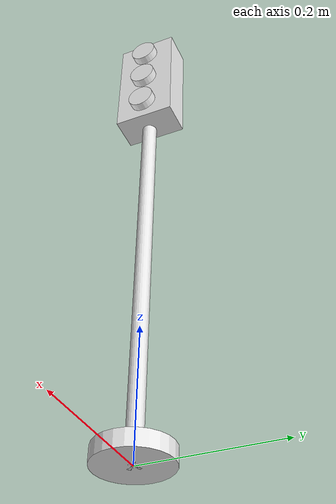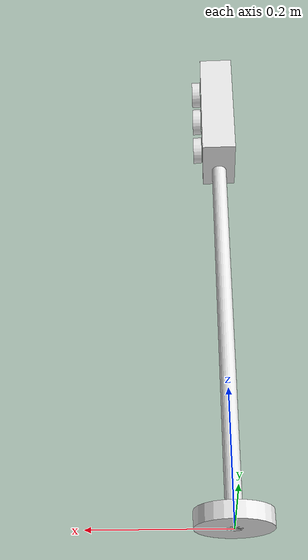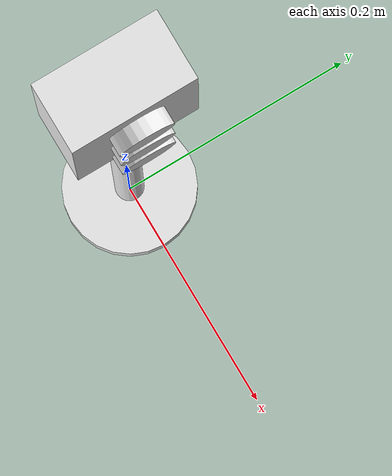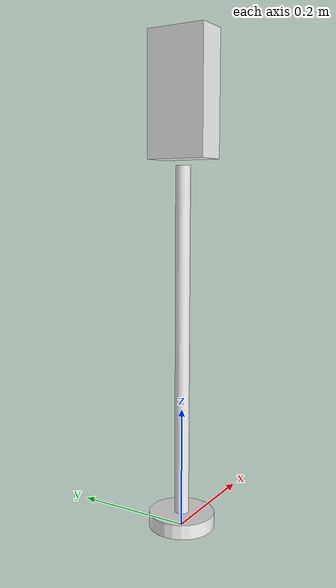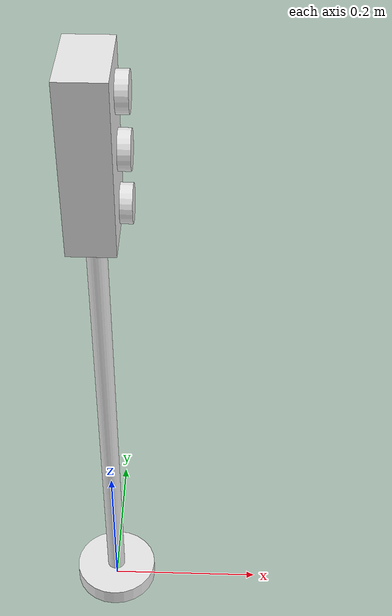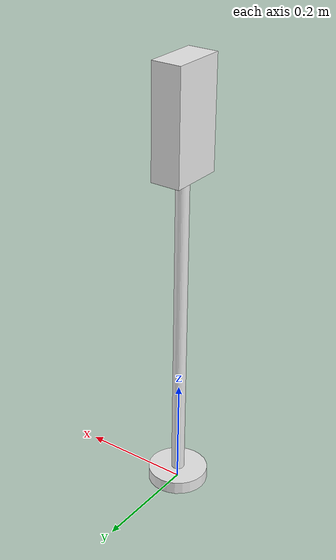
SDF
<?xml version="1.0" ?>
<sdf version="1.6">
  <model name="sq_traffic_light_yellow">
    <pose>0 0 0 0 0 0</pose>
    <static>1</static>
    <link name='pole'><collision name='pole_c'><pose>0 0 0.3 0 0 0</pose><geometry><cylinder><radius>0.012</radius><length>0.6</length></cylinder></geometry></collision><visual name='pole_v'><pose>0 0 0.3 0 0 0</pose><geometry><cylinder><radius>0.012</radius><length>0.6</length></cylinder></geometry><material><script><uri>file://media/materials/scripts/gazebo.material</uri><name>Gazebo/White</name></script><ambient>0.209 0.2145 0.231 1</ambient><diffuse>0.38 0.39 0.42 1</diffuse><specular>0.1 0.1 0.1 1</specular><emissive>0 0 0 1</emissive></material><cast_shadows>1</cast_shadows></visual></link><link name='base'><collision name='base_c'><pose>0 0 0.012 0 0 0</pose><geometry><cylinder><radius>0.055</radius><length>0.024</length></cylinder></geometry></collision><visual name='base_v'><pose>0 0 0.012 0 0 0</pose><geometry><cylinder><radius>0.055</radius><length>0.024</length></cylinder></geometry><material><script><uri>file://media/materials/scripts/gazebo.material</uri><name>Gazebo/White</name></script><ambient>0.165 0.1705 0.1815 1</ambient><diffuse>0.3 0.31 0.33 1</diffuse><specular>0.1 0.1 0.1 1</specular><emissive>0 0 0 1</emissive></material><cast_shadows>1</cast_shadows></visual></link><link name='housing'><collision name='housing_c'><pose>0 0 0.71 0 0 0</pose><geometry><box><size>0.055 0.1 0.2</size></box></geometry></collision><visual name='housing_v'><pose>0 0 0.71 0 0 0</pose><geometry><box><size>0.055 0.1 0.2</size></box></geometry><material><script><uri>file://media/materials/scripts/gazebo.material</uri><name>Gazebo/White</name></script><ambient>0.0715 0.0715 0.0825 1</ambient><diffuse>0.13 0.13 0.15 1</diffuse><specular>0.1 0.1 0.1 1</specular><emissive>0 0 0 1</emissive></material><cast_shadows>1</cast_shadows></visual></link><link name='lamp_red'><collision name='lamp_red_c'><pose>0.036 0 0.775 0 1.5708 0</pose><geometry><cylinder><radius>0.022</radius><length>0.014</length></cylinder></geometry></collision><visual name='lamp_red_v'><pose>0.036 0 0.775 0 1.5708 0</pose><geometry><cylinder><radius>0.022</radius><length>0.014</length></cylinder></geometry><material><script><uri>file://media/materials/scripts/gazebo.material</uri><name>Gazebo/White</name></script><ambient>0.319 0.055 0.022 1</ambient><diffuse>0.58 0.1 0.04 1</diffuse><specular>0.1 0.1 0.1 1</specular><emissive>0 0 0 1</emissive></material><cast_shadows>1</cast_shadows></visual></link><link name='lamp_yellow'><collision name='lamp_yellow_c'><pose>0.036 0 0.71 0 1.5708 0</pose><geometry><cylinder><radius>0.022</radius><length>0.014</length></cylinder></geometry></collision><visual name='lamp_yellow_v'><pose>0.036 0 0.71 0 1.5708 0</pose><geometry><cylinder><radius>0.022</radius><length>0.014</length></cylinder></geometry><material><script><uri>file://media/materials/scripts/gazebo.material</uri><name>Gazebo/White</name></script><ambient>0.5225 0.429 0.0275 1</ambient><diffuse>0.95 0.78 0.05 1</diffuse><specular>0.1 0.1 0.1 1</specular><emissive>0.8075 0.663 0.0425 1</emissive></material><cast_shadows>1</cast_shadows></visual></link><link name='lamp_green'><collision name='lamp_green_c'><pose>0.036 0 0.645 0 1.5708 0</pose><geometry><cylinder><radius>0.022</radius><length>0.014</length></cylinder></geometry></collision><visual name='lamp_green_v'><pose>0.036 0 0.645 0 1.5708 0</pose><geometry><cylinder><radius>0.022</radius><length>0.014</length></cylinder></geometry><material><script><uri>file://media/materials/scripts/gazebo.material</uri><name>Gazebo/White</name></script><ambient>0.033 0.1925 0.055 1</ambient><diffuse>0.06 0.35 0.1 1</diffuse><specular>0.1 0.1 0.1 1</specular><emissive>0 0 0 1</emissive></material><cast_shadows>1</cast_shadows></visual></link>
  </model>
</sdf>
